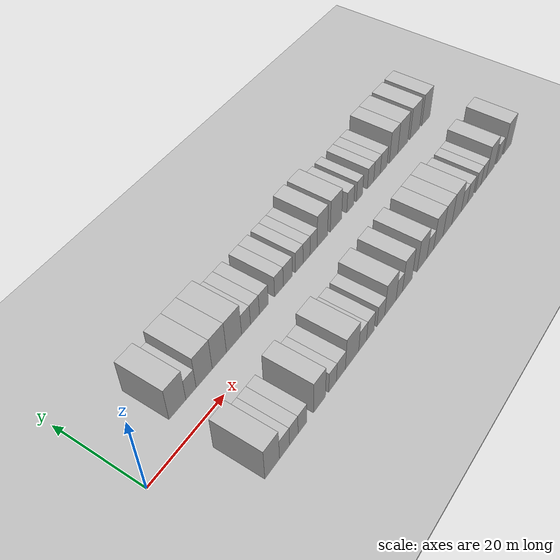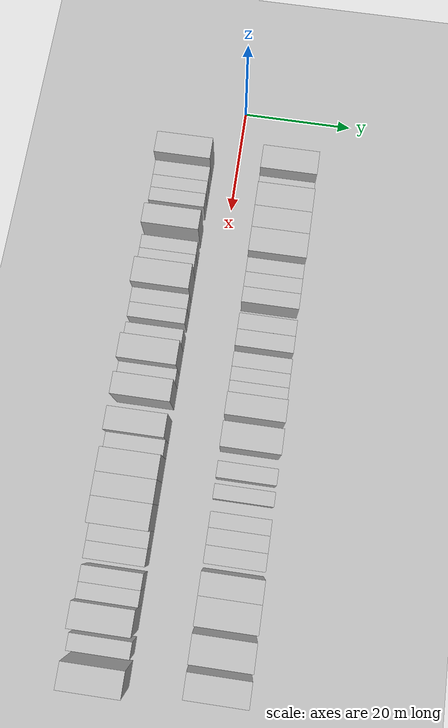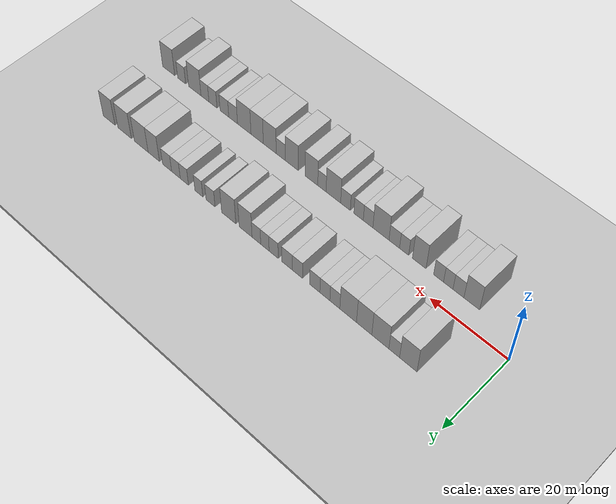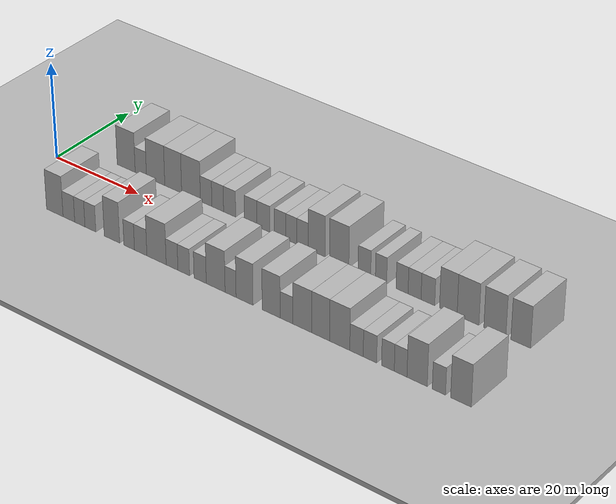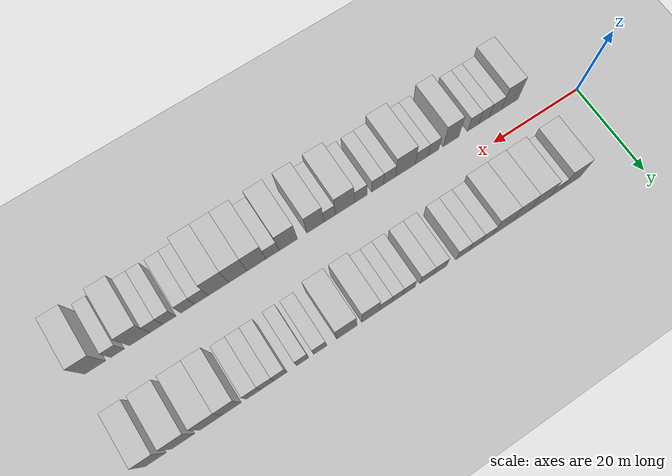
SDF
<sdf version="1.6">
 <world name="default">
  <include><name>ground_plane_1</name><uri>model://HANNAS_ground_plane</uri></include>
  <include>
   <name>ground_plane_2</name>
   <uri>model://HANNAS_ground_plane</uri>
   <pose>100 0 0  0 0 0</pose>
  </include>
  <model name="building_1">
   <static>1</static>
   <pose>13.2081 9.5000 0 0.000000 0.000000 1.570796</pose>
   <link name="link">
    <pose>0 0 4.50 0 0 0</pose>
    <collision name="collision"><geometry><box><size>10.0000 4.4162 9.0000</size></box></geometry></collision>
    <visual name="visual">
     <cast_shadows>0</cast_shadows>
     <geometry><box><size>10.0000 4.4162 9.0000</size></box></geometry>
     <material>
      <script>
       <uri>model://HANNAS_wall/materials/scripts</uri>
       <uri>model://HANNAS_wall/materials/textures</uri>
       <name>vrc/HANNAS_wall</name>
      </script>
     </material>
    </visual>
   </link>
  </model>
  <model name="building_2">
   <static>1</static>
   <pose>16.7912 9.5000 0 0.000000 0.000000 1.570796</pose>
   <link name="link">
    <pose>0 0 3.00 0 0 0</pose>
    <collision name="collision"><geometry><box><size>10.0000 2.7499 6.0000</size></box></geometry></collision>
    <visual name="visual">
     <cast_shadows>0</cast_shadows>
     <geometry><box><size>10.0000 2.7499 6.0000</size></box></geometry>
     <material>
      <script>
       <uri>model://HANNAS_wall/materials/scripts</uri>
       <uri>model://HANNAS_wall/materials/textures</uri>
       <name>vrc/HANNAS_wall</name>
      </script>
     </material>
    </visual>
   </link>
  </model>
  <model name="building_3">
   <static>1</static>
   <pose>20.3787 9.5000 0 0.000000 0.000000 1.570796</pose>
   <link name="link">
    <pose>0 0 4.50 0 0 0</pose>
    <collision name="collision"><geometry><box><size>10.0000 4.4251 9.0000</size></box></geometry></collision>
    <visual name="visual">
     <cast_shadows>0</cast_shadows>
     <geometry><box><size>10.0000 4.4251 9.0000</size></box></geometry>
     <material>
      <script>
       <uri>model://HANNAS_wall/materials/scripts</uri>
       <uri>model://HANNAS_wall/materials/textures</uri>
       <name>vrc/HANNAS_wall</name>
      </script>
     </material>
    </visual>
   </link>
  </model>
  <model name="building_4">
   <static>1</static>
   <pose>24.6089 9.5000 0 0.000000 0.000000 1.570796</pose>
   <link name="link">
    <pose>0 0 4.50 0 0 0</pose>
    <collision name="collision"><geometry><box><size>10.0000 4.0352 9.0000</size></box></geometry></collision>
    <visual name="visual">
     <cast_shadows>0</cast_shadows>
     <geometry><box><size>10.0000 4.0352 9.0000</size></box></geometry>
     <material>
      <script>
       <uri>model://HANNAS_wall/materials/scripts</uri>
       <uri>model://HANNAS_wall/materials/textures</uri>
       <name>vrc/HANNAS_wall</name>
      </script>
     </material>
    </visual>
   </link>
  </model>
  <model name="building_5">
   <static>1</static>
   <pose>28.8505 9.5000 0 0.000000 0.000000 1.570796</pose>
   <link name="link">
    <pose>0 0 4.50 0 0 0</pose>
    <collision name="collision"><geometry><box><size>10.0000 4.4482 9.0000</size></box></geometry></collision>
    <visual name="visual">
     <cast_shadows>0</cast_shadows>
     <geometry><box><size>10.0000 4.4482 9.0000</size></box></geometry>
     <material>
      <script>
       <uri>model://HANNAS_wall/materials/scripts</uri>
       <uri>model://HANNAS_wall/materials/textures</uri>
       <name>vrc/HANNAS_wall</name>
      </script>
     </material>
    </visual>
   </link>
  </model>
  <model name="building_6">
   <static>1</static>
   <pose>32.4197 9.5000 0 0.000000 0.000000 1.570796</pose>
   <link name="link">
    <pose>0 0 3.00 0 0 0</pose>
    <collision name="collision"><geometry><box><size>10.0000 2.6902 6.0000</size></box></geometry></collision>
    <visual name="visual">
     <cast_shadows>0</cast_shadows>
     <geometry><box><size>10.0000 2.6902 6.0000</size></box></geometry>
     <material>
      <script>
       <uri>model://HANNAS_wall/materials/scripts</uri>
       <uri>model://HANNAS_wall/materials/textures</uri>
       <name>vrc/HANNAS_wall</name>
      </script>
     </material>
    </visual>
   </link>
  </model>
  <model name="building_7">
   <static>1</static>
   <pose>35.1305 9.5000 0 0.000000 0.000000 1.570796</pose>
   <link name="link">
    <pose>0 0 3.00 0 0 0</pose>
    <collision name="collision"><geometry><box><size>10.0000 2.7314 6.0000</size></box></geometry></collision>
    <visual name="visual">
     <cast_shadows>0</cast_shadows>
     <geometry><box><size>10.0000 2.7314 6.0000</size></box></geometry>
     <material>
      <script>
       <uri>model://HANNAS_wall/materials/scripts</uri>
       <uri>model://HANNAS_wall/materials/textures</uri>
       <name>vrc/HANNAS_wall</name>
      </script>
     </material>
    </visual>
   </link>
  </model>
  <model name="building_8">
   <static>1</static>
   <pose>37.9028 9.5000 0 0.000000 0.000000 1.570796</pose>
   <link name="link">
    <pose>0 0 3.00 0 0 0</pose>
    <collision name="collision"><geometry><box><size>10.0000 2.8131 6.0000</size></box></geometry></collision>
    <visual name="visual">
     <cast_shadows>0</cast_shadows>
     <geometry><box><size>10.0000 2.8131 6.0000</size></box></geometry>
     <material>
      <script>
       <uri>model://HANNAS_wall/materials/scripts</uri>
       <uri>model://HANNAS_wall/materials/textures</uri>
       <name>vrc/HANNAS_wall</name>
      </script>
     </material>
    </visual>
   </link>
  </model>
  <model name="building_9">
   <static>1</static>
   <pose>42.7395 9.5000 0 0.000000 0.000000 1.570796</pose>
   <link name="link">
    <pose>0 0 3.00 0 0 0</pose>
    <collision name="collision"><geometry><box><size>10.0000 2.8603 6.0000</size></box></geometry></collision>
    <visual name="visual">
     <cast_shadows>0</cast_shadows>
     <geometry><box><size>10.0000 2.8603 6.0000</size></box></geometry>
     <material>
      <script>
       <uri>model://HANNAS_wall/materials/scripts</uri>
       <uri>model://HANNAS_wall/materials/textures</uri>
       <name>vrc/HANNAS_wall</name>
      </script>
     </material>
    </visual>
   </link>
  </model>
  <model name="building_10">
   <static>1</static>
   <pose>45.6591 9.5000 0 0.000000 0.000000 1.570796</pose>
   <link name="link">
    <pose>0 0 3.00 0 0 0</pose>
    <collision name="collision"><geometry><box><size>10.0000 2.9788 6.0000</size></box></geometry></collision>
    <visual name="visual">
     <cast_shadows>0</cast_shadows>
     <geometry><box><size>10.0000 2.9788 6.0000</size></box></geometry>
     <material>
      <script>
       <uri>model://HANNAS_wall/materials/scripts</uri>
       <uri>model://HANNAS_wall/materials/textures</uri>
       <name>vrc/HANNAS_wall</name>
      </script>
     </material>
    </visual>
   </link>
  </model>
  <model name="building_11">
   <static>1</static>
   <pose>49.4568 9.5000 0 0.000000 0.000000 1.570796</pose>
   <link name="link">
    <pose>0 0 3.00 0 0 0</pose>
    <collision name="collision"><geometry><box><size>10.0000 2.6166 6.0000</size></box></geometry></collision>
    <visual name="visual">
     <cast_shadows>0</cast_shadows>
     <geometry><box><size>10.0000 2.6166 6.0000</size></box></geometry>
     <material>
      <script>
       <uri>model://HANNAS_wall/materials/scripts</uri>
       <uri>model://HANNAS_wall/materials/textures</uri>
       <name>vrc/HANNAS_wall</name>
      </script>
     </material>
    </visual>
   </link>
  </model>
  <model name="building_12">
   <static>1</static>
   <pose>51.9722 9.5000 0 0.000000 0.000000 1.570796</pose>
   <link name="link">
    <pose>0 0 3.00 0 0 0</pose>
    <collision name="collision"><geometry><box><size>10.0000 2.4142 6.0000</size></box></geometry></collision>
    <visual name="visual">
     <cast_shadows>0</cast_shadows>
     <geometry><box><size>10.0000 2.4142 6.0000</size></box></geometry>
     <material>
      <script>
       <uri>model://HANNAS_wall/materials/scripts</uri>
       <uri>model://HANNAS_wall/materials/textures</uri>
       <name>vrc/HANNAS_wall</name>
      </script>
     </material>
    </visual>
   </link>
  </model>
  <model name="building_13">
   <static>1</static>
   <pose>54.4409 9.5000 0 0.000000 0.000000 1.570796</pose>
   <link name="link">
    <pose>0 0 3.00 0 0 0</pose>
    <collision name="collision"><geometry><box><size>10.0000 2.5232 6.0000</size></box></geometry></collision>
    <visual name="visual">
     <cast_shadows>0</cast_shadows>
     <geometry><box><size>10.0000 2.5232 6.0000</size></box></geometry>
     <material>
      <script>
       <uri>model://HANNAS_wall/materials/scripts</uri>
       <uri>model://HANNAS_wall/materials/textures</uri>
       <name>vrc/HANNAS_wall</name>
      </script>
     </material>
    </visual>
   </link>
  </model>
  <model name="building_14">
   <static>1</static>
   <pose>57.5914 9.5000 0 0.000000 0.000000 1.570796</pose>
   <link name="link">
    <pose>0 0 4.50 0 0 0</pose>
    <collision name="collision"><geometry><box><size>10.0000 3.7779 9.0000</size></box></geometry></collision>
    <visual name="visual">
     <cast_shadows>0</cast_shadows>
     <geometry><box><size>10.0000 3.7779 9.0000</size></box></geometry>
     <material>
      <script>
       <uri>model://HANNAS_wall/materials/scripts</uri>
       <uri>model://HANNAS_wall/materials/textures</uri>
       <name>vrc/HANNAS_wall</name>
      </script>
     </material>
    </visual>
   </link>
  </model>
  <model name="building_15">
   <static>1</static>
   <pose>62.5918 9.5000 0 0.000000 0.000000 1.570796</pose>
   <link name="link">
    <pose>0 0 4.50 0 0 0</pose>
    <collision name="collision"><geometry><box><size>10.0000 4.2228 9.0000</size></box></geometry></collision>
    <visual name="visual">
     <cast_shadows>0</cast_shadows>
     <geometry><box><size>10.0000 4.2228 9.0000</size></box></geometry>
     <material>
      <script>
       <uri>model://HANNAS_wall/materials/scripts</uri>
       <uri>model://HANNAS_wall/materials/textures</uri>
       <name>vrc/HANNAS_wall</name>
      </script>
     </material>
    </visual>
   </link>
  </model>
  <model name="building_16">
   <static>1</static>
   <pose>68.0669 9.5000 0 0.000000 0.000000 1.570796</pose>
   <link name="link">
    <pose>0 0 3.00 0 0 0</pose>
    <collision name="collision"><geometry><box><size>10.0000 2.7273 6.0000</size></box></geometry></collision>
    <visual name="visual">
     <cast_shadows>0</cast_shadows>
     <geometry><box><size>10.0000 2.7273 6.0000</size></box></geometry>
     <material>
      <script>
       <uri>model://HANNAS_wall/materials/scripts</uri>
       <uri>model://HANNAS_wall/materials/textures</uri>
       <name>vrc/HANNAS_wall</name>
      </script>
     </material>
    </visual>
   </link>
  </model>
  <model name="building_17">
   <static>1</static>
   <pose>71.6421 9.5000 0 0.000000 0.000000 1.570796</pose>
   <link name="link">
    <pose>0 0 3.00 0 0 0</pose>
    <collision name="collision"><geometry><box><size>10.0000 2.4231 6.0000</size></box></geometry></collision>
    <visual name="visual">
     <cast_shadows>0</cast_shadows>
     <geometry><box><size>10.0000 2.4231 6.0000</size></box></geometry>
     <material>
      <script>
       <uri>model://HANNAS_wall/materials/scripts</uri>
       <uri>model://HANNAS_wall/materials/textures</uri>
       <name>vrc/HANNAS_wall</name>
      </script>
     </material>
    </visual>
   </link>
  </model>
  <model name="building_18">
   <static>1</static>
   <pose>76.1286 9.5000 0 0.000000 0.000000 1.570796</pose>
   <link name="link">
    <pose>0 0 3.00 0 0 0</pose>
    <collision name="collision"><geometry><box><size>10.0000 2.5498 6.0000</size></box></geometry></collision>
    <visual name="visual">
     <cast_shadows>0</cast_shadows>
     <geometry><box><size>10.0000 2.5498 6.0000</size></box></geometry>
     <material>
      <script>
       <uri>model://HANNAS_wall/materials/scripts</uri>
       <uri>model://HANNAS_wall/materials/textures</uri>
       <name>vrc/HANNAS_wall</name>
      </script>
     </material>
    </visual>
   </link>
  </model>
  <model name="building_19">
   <static>1</static>
   <pose>78.7654 9.5000 0 0.000000 0.000000 1.570796</pose>
   <link name="link">
    <pose>0 0 3.00 0 0 0</pose>
    <collision name="collision"><geometry><box><size>10.0000 2.7238 6.0000</size></box></geometry></collision>
    <visual name="visual">
     <cast_shadows>0</cast_shadows>
     <geometry><box><size>10.0000 2.7238 6.0000</size></box></geometry>
     <material>
      <script>
       <uri>model://HANNAS_wall/materials/scripts</uri>
       <uri>model://HANNAS_wall/materials/textures</uri>
       <name>vrc/HANNAS_wall</name>
      </script>
     </material>
    </visual>
   </link>
  </model>
  <model name="building_20">
   <static>1</static>
   <pose>81.5579 9.5000 0 0.000000 0.000000 1.570796</pose>
   <link name="link">
    <pose>0 0 3.00 0 0 0</pose>
    <collision name="collision"><geometry><box><size>10.0000 2.8613 6.0000</size></box></geometry></collision>
    <visual name="visual">
     <cast_shadows>0</cast_shadows>
     <geometry><box><size>10.0000 2.8613 6.0000</size></box></geometry>
     <material>
      <script>
       <uri>model://HANNAS_wall/materials/scripts</uri>
       <uri>model://HANNAS_wall/materials/textures</uri>
       <name>vrc/HANNAS_wall</name>
      </script>
     </material>
    </visual>
   </link>
  </model>
  <model name="building_21">
   <static>1</static>
   <pose>85.8065 9.5000 0 0.000000 0.000000 1.570796</pose>
   <link name="link">
    <pose>0 0 4.50 0 0 0</pose>
    <collision name="collision"><geometry><box><size>10.0000 3.6358 9.0000</size></box></geometry></collision>
    <visual name="visual">
     <cast_shadows>0</cast_shadows>
     <geometry><box><size>10.0000 3.6358 9.0000</size></box></geometry>
     <material>
      <script>
       <uri>model://HANNAS_wall/materials/scripts</uri>
       <uri>model://HANNAS_wall/materials/textures</uri>
       <name>vrc/HANNAS_wall</name>
      </script>
     </material>
    </visual>
   </link>
  </model>
  <model name="building_22">
   <static>1</static>
   <pose>89.8569 9.5000 0 0.000000 0.000000 1.570796</pose>
   <link name="link">
    <pose>0 0 4.50 0 0 0</pose>
    <collision name="collision"><geometry><box><size>10.0000 4.4651 9.0000</size></box></geometry></collision>
    <visual name="visual">
     <cast_shadows>0</cast_shadows>
     <geometry><box><size>10.0000 4.4651 9.0000</size></box></geometry>
     <material>
      <script>
       <uri>model://HANNAS_wall/materials/scripts</uri>
       <uri>model://HANNAS_wall/materials/textures</uri>
       <name>vrc/HANNAS_wall</name>
      </script>
     </material>
    </visual>
   </link>
  </model>
  <model name="building_23">
   <static>1</static>
   <pose>95.3158 9.5000 0 0.000000 0.000000 1.570796</pose>
   <link name="link">
    <pose>0 0 4.50 0 0 0</pose>
    <collision name="collision"><geometry><box><size>10.0000 4.4527 9.0000</size></box></geometry></collision>
    <visual name="visual">
     <cast_shadows>0</cast_shadows>
     <geometry><box><size>10.0000 4.4527 9.0000</size></box></geometry>
     <material>
      <script>
       <uri>model://HANNAS_wall/materials/scripts</uri>
       <uri>model://HANNAS_wall/materials/textures</uri>
       <name>vrc/HANNAS_wall</name>
      </script>
     </material>
    </visual>
   </link>
  </model>
  <model name="building_24">
   <static>1</static>
   <pose>100.5051 9.5000 0 0.000000 0.000000 1.570796</pose>
   <link name="link">
    <pose>0 0 4.50 0 0 0</pose>
    <collision name="collision"><geometry><box><size>10.0000 3.9260 9.0000</size></box></geometry></collision>
    <visual name="visual">
     <cast_shadows>0</cast_shadows>
     <geometry><box><size>10.0000 3.9260 9.0000</size></box></geometry>
     <material>
      <script>
       <uri>model://HANNAS_wall/materials/scripts</uri>
       <uri>model://HANNAS_wall/materials/textures</uri>
       <name>vrc/HANNAS_wall</name>
      </script>
     </material>
    </visual>
   </link>
  </model>
  <model name="building_48">
   <static>1</static>
   <pose>13.0081 -9.5000 0 0.000000 0.000000 1.570796</pose>
   <link name="link">
    <pose>0 0 4.50 0 0 0</pose>
    <collision name="collision"><geometry><box><size>10.0000 4.0163 9.0000</size></box></geometry></collision>
    <visual name="visual">
     <cast_shadows>0</cast_shadows>
     <geometry><box><size>10.0000 4.0163 9.0000</size></box></geometry>
     <material>
      <script>
       <uri>model://HANNAS_wall/materials/scripts</uri>
       <uri>model://HANNAS_wall/materials/textures</uri>
       <name>vrc/HANNAS_wall</name>
      </script>
     </material>
    </visual>
   </link>
  </model>
  <model name="building_49">
   <static>1</static>
   <pose>16.4248 -9.5000 0 0.000000 0.000000 1.570796</pose>
   <link name="link">
    <pose>0 0 3.00 0 0 0</pose>
    <collision name="collision"><geometry><box><size>10.0000 2.8171 6.0000</size></box></geometry></collision>
    <visual name="visual">
     <cast_shadows>0</cast_shadows>
     <geometry><box><size>10.0000 2.8171 6.0000</size></box></geometry>
     <material>
      <script>
       <uri>model://HANNAS_wall/materials/scripts</uri>
       <uri>model://HANNAS_wall/materials/textures</uri>
       <name>vrc/HANNAS_wall</name>
      </script>
     </material>
    </visual>
   </link>
  </model>
  <model name="building_50">
   <static>1</static>
   <pose>19.0625 -9.5000 0 0.000000 0.000000 1.570796</pose>
   <link name="link">
    <pose>0 0 3.00 0 0 0</pose>
    <collision name="collision"><geometry><box><size>10.0000 2.4583 6.0000</size></box></geometry></collision>
    <visual name="visual">
     <cast_shadows>0</cast_shadows>
     <geometry><box><size>10.0000 2.4583 6.0000</size></box></geometry>
     <material>
      <script>
       <uri>model://HANNAS_wall/materials/scripts</uri>
       <uri>model://HANNAS_wall/materials/textures</uri>
       <name>vrc/HANNAS_wall</name>
      </script>
     </material>
    </visual>
   </link>
  </model>
  <model name="building_51">
   <static>1</static>
   <pose>21.5917 -9.5000 0 0.000000 0.000000 1.570796</pose>
   <link name="link">
    <pose>0 0 3.00 0 0 0</pose>
    <collision name="collision"><geometry><box><size>10.0000 2.6000 6.0000</size></box></geometry></collision>
    <visual name="visual">
     <cast_shadows>0</cast_shadows>
     <geometry><box><size>10.0000 2.6000 6.0000</size></box></geometry>
     <material>
      <script>
       <uri>model://HANNAS_wall/materials/scripts</uri>
       <uri>model://HANNAS_wall/materials/textures</uri>
       <name>vrc/HANNAS_wall</name>
      </script>
     </material>
    </visual>
   </link>
  </model>
  <model name="building_52">
   <static>1</static>
   <pose>26.7116 -9.5000 0 0.000000 0.000000 1.570796</pose>
   <link name="link">
    <pose>0 0 4.50 0 0 0</pose>
    <collision name="collision"><geometry><box><size>10.0000 3.6400 9.0000</size></box></geometry></collision>
    <visual name="visual">
     <cast_shadows>0</cast_shadows>
     <geometry><box><size>10.0000 3.6400 9.0000</size></box></geometry>
     <material>
      <script>
       <uri>model://HANNAS_wall/materials/scripts</uri>
       <uri>model://HANNAS_wall/materials/textures</uri>
       <name>vrc/HANNAS_wall</name>
      </script>
     </material>
    </visual>
   </link>
  </model>
  <model name="building_53">
   <static>1</static>
   <pose>30.7619 -9.5000 0 0.000000 0.000000 1.570796</pose>
   <link name="link">
    <pose>0 0 3.00 0 0 0</pose>
    <collision name="collision"><geometry><box><size>10.0000 2.4605 6.0000</size></box></geometry></collision>
    <visual name="visual">
     <cast_shadows>0</cast_shadows>
     <geometry><box><size>10.0000 2.4605 6.0000</size></box></geometry>
     <material>
      <script>
       <uri>model://HANNAS_wall/materials/scripts</uri>
       <uri>model://HANNAS_wall/materials/textures</uri>
       <name>vrc/HANNAS_wall</name>
      </script>
     </material>
    </visual>
   </link>
  </model>
  <model name="building_54">
   <static>1</static>
   <pose>33.4338 -9.5000 0 0.000000 0.000000 1.570796</pose>
   <link name="link">
    <pose>0 0 3.00 0 0 0</pose>
    <collision name="collision"><geometry><box><size>10.0000 2.8833 6.0000</size></box></geometry></collision>
    <visual name="visual">
     <cast_shadows>0</cast_shadows>
     <geometry><box><size>10.0000 2.8833 6.0000</size></box></geometry>
     <material>
      <script>
       <uri>model://HANNAS_wall/materials/scripts</uri>
       <uri>model://HANNAS_wall/materials/textures</uri>
       <name>vrc/HANNAS_wall</name>
      </script>
     </material>
    </visual>
   </link>
  </model>
  <model name="building_55">
   <static>1</static>
   <pose>37.0946 -9.5000 0 0.000000 0.000000 1.570796</pose>
   <link name="link">
    <pose>0 0 4.50 0 0 0</pose>
    <collision name="collision"><geometry><box><size>10.0000 4.4383 9.0000</size></box></geometry></collision>
    <visual name="visual">
     <cast_shadows>0</cast_shadows>
     <geometry><box><size>10.0000 4.4383 9.0000</size></box></geometry>
     <material>
      <script>
       <uri>model://HANNAS_wall/materials/scripts</uri>
       <uri>model://HANNAS_wall/materials/textures</uri>
       <name>vrc/HANNAS_wall</name>
      </script>
     </material>
    </visual>
   </link>
  </model>
  <model name="building_56">
   <static>1</static>
   <pose>40.6540 -9.5000 0 0.000000 0.000000 1.570796</pose>
   <link name="link">
    <pose>0 0 3.00 0 0 0</pose>
    <collision name="collision"><geometry><box><size>10.0000 2.6807 6.0000</size></box></geometry></collision>
    <visual name="visual">
     <cast_shadows>0</cast_shadows>
     <geometry><box><size>10.0000 2.6807 6.0000</size></box></geometry>
     <material>
      <script>
       <uri>model://HANNAS_wall/materials/scripts</uri>
       <uri>model://HANNAS_wall/materials/textures</uri>
       <name>vrc/HANNAS_wall</name>
      </script>
     </material>
    </visual>
   </link>
  </model>
  <model name="building_57">
   <static>1</static>
   <pose>43.3225 -9.5000 0 0.000000 0.000000 1.570796</pose>
   <link name="link">
    <pose>0 0 3.00 0 0 0</pose>
    <collision name="collision"><geometry><box><size>10.0000 2.6564 6.0000</size></box></geometry></collision>
    <visual name="visual">
     <cast_shadows>0</cast_shadows>
     <geometry><box><size>10.0000 2.6564 6.0000</size></box></geometry>
     <material>
      <script>
       <uri>model://HANNAS_wall/materials/scripts</uri>
       <uri>model://HANNAS_wall/materials/textures</uri>
       <name>vrc/HANNAS_wall</name>
      </script>
     </material>
    </visual>
   </link>
  </model>
  <model name="building_58">
   <static>1</static>
   <pose>47.0223 -9.5000 0 0.000000 0.000000 1.570796</pose>
   <link name="link">
    <pose>0 0 3.00 0 0 0</pose>
    <collision name="collision"><geometry><box><size>10.0000 2.7432 6.0000</size></box></geometry></collision>
    <visual name="visual">
     <cast_shadows>0</cast_shadows>
     <geometry><box><size>10.0000 2.7432 6.0000</size></box></geometry>
     <material>
      <script>
       <uri>model://HANNAS_wall/materials/scripts</uri>
       <uri>model://HANNAS_wall/materials/textures</uri>
       <name>vrc/HANNAS_wall</name>
      </script>
     </material>
    </visual>
   </link>
  </model>
  <model name="building_59">
   <static>1</static>
   <pose>50.4941 -9.5000 0 0.000000 0.000000 1.570796</pose>
   <link name="link">
    <pose>0 0 4.50 0 0 0</pose>
    <collision name="collision"><geometry><box><size>10.0000 4.2003 9.0000</size></box></geometry></collision>
    <visual name="visual">
     <cast_shadows>0</cast_shadows>
     <geometry><box><size>10.0000 4.2003 9.0000</size></box></geometry>
     <material>
      <script>
       <uri>model://HANNAS_wall/materials/scripts</uri>
       <uri>model://HANNAS_wall/materials/textures</uri>
       <name>vrc/HANNAS_wall</name>
      </script>
     </material>
    </visual>
   </link>
  </model>
  <model name="building_60">
   <static>1</static>
   <pose>53.8050 -9.5000 0 0.000000 0.000000 1.570796</pose>
   <link name="link">
    <pose>0 0 3.00 0 0 0</pose>
    <collision name="collision"><geometry><box><size>10.0000 2.4215 6.0000</size></box></geometry></collision>
    <visual name="visual">
     <cast_shadows>0</cast_shadows>
     <geometry><box><size>10.0000 2.4215 6.0000</size></box></geometry>
     <material>
      <script>
       <uri>model://HANNAS_wall/materials/scripts</uri>
       <uri>model://HANNAS_wall/materials/textures</uri>
       <name>vrc/HANNAS_wall</name>
      </script>
     </material>
    </visual>
   </link>
  </model>
  <model name="building_61">
   <static>1</static>
   <pose>56.8769 -9.5000 0 0.000000 0.000000 1.570796</pose>
   <link name="link">
    <pose>0 0 4.50 0 0 0</pose>
    <collision name="collision"><geometry><box><size>10.0000 3.7224 9.0000</size></box></geometry></collision>
    <visual name="visual">
     <cast_shadows>0</cast_shadows>
     <geometry><box><size>10.0000 3.7224 9.0000</size></box></geometry>
     <material>
      <script>
       <uri>model://HANNAS_wall/materials/scripts</uri>
       <uri>model://HANNAS_wall/materials/textures</uri>
       <name>vrc/HANNAS_wall</name>
      </script>
     </material>
    </visual>
   </link>
  </model>
  <model name="building_62">
   <static>1</static>
   <pose>62.6803 -9.5000 0 0.000000 0.000000 1.570796</pose>
   <link name="link">
    <pose>0 0 4.50 0 0 0</pose>
    <collision name="collision"><geometry><box><size>10.0000 3.8843 9.0000</size></box></geometry></collision>
    <visual name="visual">
     <cast_shadows>0</cast_shadows>
     <geometry><box><size>10.0000 3.8843 9.0000</size></box></geometry>
     <material>
      <script>
       <uri>model://HANNAS_wall/materials/scripts</uri>
       <uri>model://HANNAS_wall/materials/textures</uri>
       <name>vrc/HANNAS_wall</name>
      </script>
     </material>
    </visual>
   </link>
  </model>
  <model name="building_63">
   <static>1</static>
   <pose>66.0019 -9.5000 0 0.000000 0.000000 1.570796</pose>
   <link name="link">
    <pose>0 0 3.00 0 0 0</pose>
    <collision name="collision"><geometry><box><size>10.0000 2.7589 6.0000</size></box></geometry></collision>
    <visual name="visual">
     <cast_shadows>0</cast_shadows>
     <geometry><box><size>10.0000 2.7589 6.0000</size></box></geometry>
     <material>
      <script>
       <uri>model://HANNAS_wall/materials/scripts</uri>
       <uri>model://HANNAS_wall/materials/textures</uri>
       <name>vrc/HANNAS_wall</name>
      </script>
     </material>
    </visual>
   </link>
  </model>
  <model name="building_64">
   <static>1</static>
   <pose>69.3535 -9.5000 0 0.000000 0.000000 1.570796</pose>
   <link name="link">
    <pose>0 0 4.50 0 0 0</pose>
    <collision name="collision"><geometry><box><size>10.0000 3.9443 9.0000</size></box></geometry></collision>
    <visual name="visual">
     <cast_shadows>0</cast_shadows>
     <geometry><box><size>10.0000 3.9443 9.0000</size></box></geometry>
     <material>
      <script>
       <uri>model://HANNAS_wall/materials/scripts</uri>
       <uri>model://HANNAS_wall/materials/textures</uri>
       <name>vrc/HANNAS_wall</name>
      </script>
     </material>
    </visual>
   </link>
  </model>
  <model name="building_65">
   <static>1</static>
   <pose>73.2317 -9.5000 0 0.000000 0.000000 1.570796</pose>
   <link name="link">
    <pose>0 0 4.50 0 0 0</pose>
    <collision name="collision"><geometry><box><size>10.0000 3.8122 9.0000</size></box></geometry></collision>
    <visual name="visual">
     <cast_shadows>0</cast_shadows>
     <geometry><box><size>10.0000 3.8122 9.0000</size></box></geometry>
     <material>
      <script>
       <uri>model://HANNAS_wall/materials/scripts</uri>
       <uri>model://HANNAS_wall/materials/textures</uri>
       <name>vrc/HANNAS_wall</name>
      </script>
     </material>
    </visual>
   </link>
  </model>
  <model name="building_66">
   <static>1</static>
   <pose>77.2452 -9.5000 0 0.000000 0.000000 1.570796</pose>
   <link name="link">
    <pose>0 0 4.50 0 0 0</pose>
    <collision name="collision"><geometry><box><size>10.0000 4.2148 9.0000</size></box></geometry></collision>
    <visual name="visual">
     <cast_shadows>0</cast_shadows>
     <geometry><box><size>10.0000 4.2148 9.0000</size></box></geometry>
     <material>
      <script>
       <uri>model://HANNAS_wall/materials/scripts</uri>
       <uri>model://HANNAS_wall/materials/textures</uri>
       <name>vrc/HANNAS_wall</name>
      </script>
     </material>
    </visual>
   </link>
  </model>
  <model name="building_67">
   <static>1</static>
   <pose>80.7383 -9.5000 0 0.000000 0.000000 1.570796</pose>
   <link name="link">
    <pose>0 0 3.00 0 0 0</pose>
    <collision name="collision"><geometry><box><size>10.0000 2.7713 6.0000</size></box></geometry></collision>
    <visual name="visual">
     <cast_shadows>0</cast_shadows>
     <geometry><box><size>10.0000 2.7713 6.0000</size></box></geometry>
     <material>
      <script>
       <uri>model://HANNAS_wall/materials/scripts</uri>
       <uri>model://HANNAS_wall/materials/textures</uri>
       <name>vrc/HANNAS_wall</name>
      </script>
     </material>
    </visual>
   </link>
  </model>
  <model name="building_68">
   <static>1</static>
   <pose>83.5060 -9.5000 0 0.000000 0.000000 1.570796</pose>
   <link name="link">
    <pose>0 0 3.00 0 0 0</pose>
    <collision name="collision"><geometry><box><size>10.0000 2.7641 6.0000</size></box></geometry></collision>
    <visual name="visual">
     <cast_shadows>0</cast_shadows>
     <geometry><box><size>10.0000 2.7641 6.0000</size></box></geometry>
     <material>
      <script>
       <uri>model://HANNAS_wall/materials/scripts</uri>
       <uri>model://HANNAS_wall/materials/textures</uri>
       <name>vrc/HANNAS_wall</name>
      </script>
     </material>
    </visual>
   </link>
  </model>
  <model name="building_69">
   <static>1</static>
   <pose>87.1852 -9.5000 0 0.000000 0.000000 1.570796</pose>
   <link name="link">
    <pose>0 0 3.00 0 0 0</pose>
    <collision name="collision"><geometry><box><size>10.0000 2.5942 6.0000</size></box></geometry></collision>
    <visual name="visual">
     <cast_shadows>0</cast_shadows>
     <geometry><box><size>10.0000 2.5942 6.0000</size></box></geometry>
     <material>
      <script>
       <uri>model://HANNAS_wall/materials/scripts</uri>
       <uri>model://HANNAS_wall/materials/textures</uri>
       <name>vrc/HANNAS_wall</name>
      </script>
     </material>
    </visual>
   </link>
  </model>
  <model name="building_70">
   <static>1</static>
   <pose>89.7645 -9.5000 0 0.000000 0.000000 1.570796</pose>
   <link name="link">
    <pose>0 0 3.00 0 0 0</pose>
    <collision name="collision"><geometry><box><size>10.0000 2.5643 6.0000</size></box></geometry></collision>
    <visual name="visual">
     <cast_shadows>0</cast_shadows>
     <geometry><box><size>10.0000 2.5643 6.0000</size></box></geometry>
     <material>
      <script>
       <uri>model://HANNAS_wall/materials/scripts</uri>
       <uri>model://HANNAS_wall/materials/textures</uri>
       <name>vrc/HANNAS_wall</name>
      </script>
     </material>
    </visual>
   </link>
  </model>
  <model name="building_71">
   <static>1</static>
   <pose>93.0785 -9.5000 0 0.000000 0.000000 1.570796</pose>
   <link name="link">
    <pose>0 0 4.50 0 0 0</pose>
    <collision name="collision"><geometry><box><size>10.0000 4.0636 9.0000</size></box></geometry></collision>
    <visual name="visual">
     <cast_shadows>0</cast_shadows>
     <geometry><box><size>10.0000 4.0636 9.0000</size></box></geometry>
     <material>
      <script>
       <uri>model://HANNAS_wall/materials/scripts</uri>
       <uri>model://HANNAS_wall/materials/textures</uri>
       <name>vrc/HANNAS_wall</name>
      </script>
     </material>
    </visual>
   </link>
  </model>
  <model name="building_72">
   <static>1</static>
   <pose>97.4262 -9.5000 0 0.000000 0.000000 1.570796</pose>
   <link name="link">
    <pose>0 0 3.00 0 0 0</pose>
    <collision name="collision"><geometry><box><size>10.0000 2.6317 6.0000</size></box></geometry></collision>
    <visual name="visual">
     <cast_shadows>0</cast_shadows>
     <geometry><box><size>10.0000 2.6317 6.0000</size></box></geometry>
     <material>
      <script>
       <uri>model://HANNAS_wall/materials/scripts</uri>
       <uri>model://HANNAS_wall/materials/textures</uri>
       <name>vrc/HANNAS_wall</name>
      </script>
     </material>
    </visual>
   </link>
  </model>
  <model name="building_73">
   <static>1</static>
   <pose>101.7698 -9.5000 0 0.000000 0.000000 1.570796</pose>
   <link name="link">
    <pose>0 0 4.50 0 0 0</pose>
    <collision name="collision"><geometry><box><size>10.0000 4.0556 9.0000</size></box></geometry></collision>
    <visual name="visual">
     <cast_shadows>0</cast_shadows>
     <geometry><box><size>10.0000 4.0556 9.0000</size></box></geometry>
     <material>
      <script>
       <uri>model://HANNAS_wall/materials/scripts</uri>
       <uri>model://HANNAS_wall/materials/textures</uri>
       <name>vrc/HANNAS_wall</name>
      </script>
     </material>
    </visual>
   </link>
  </model>
 </world>
</sdf>
